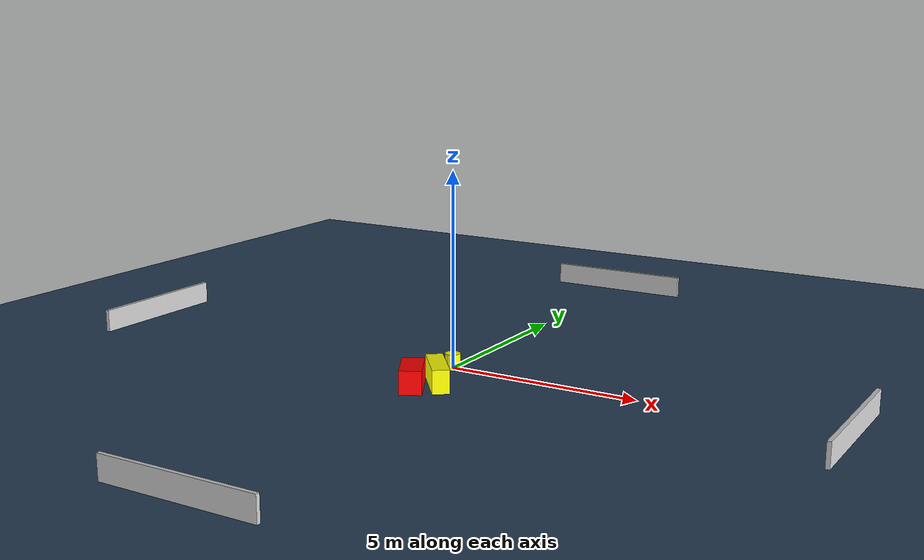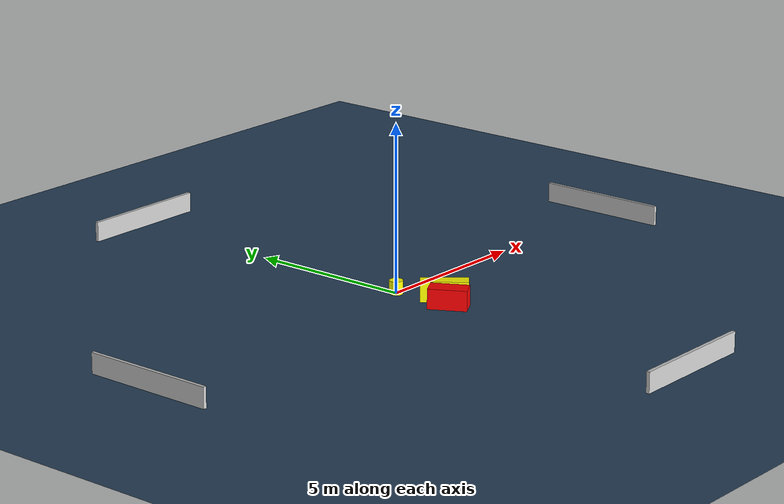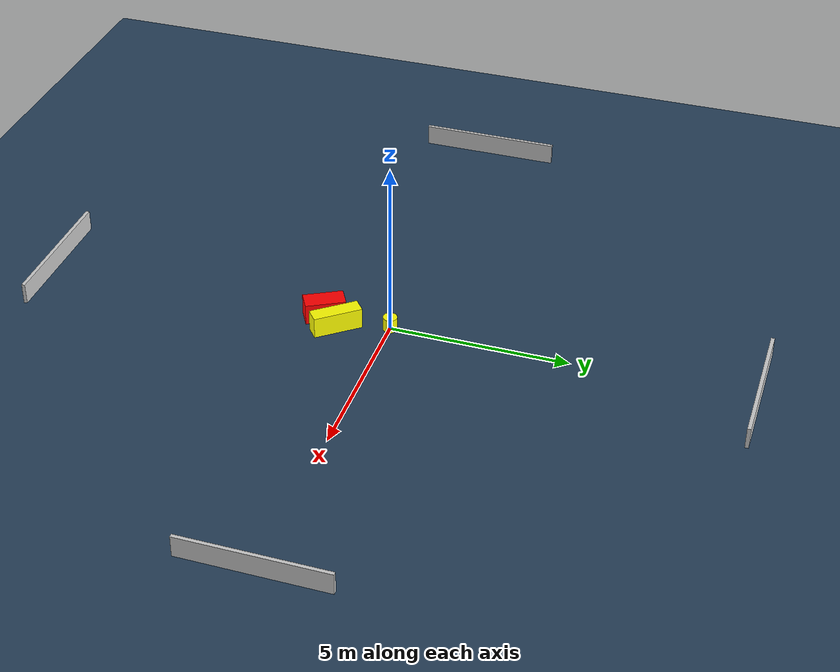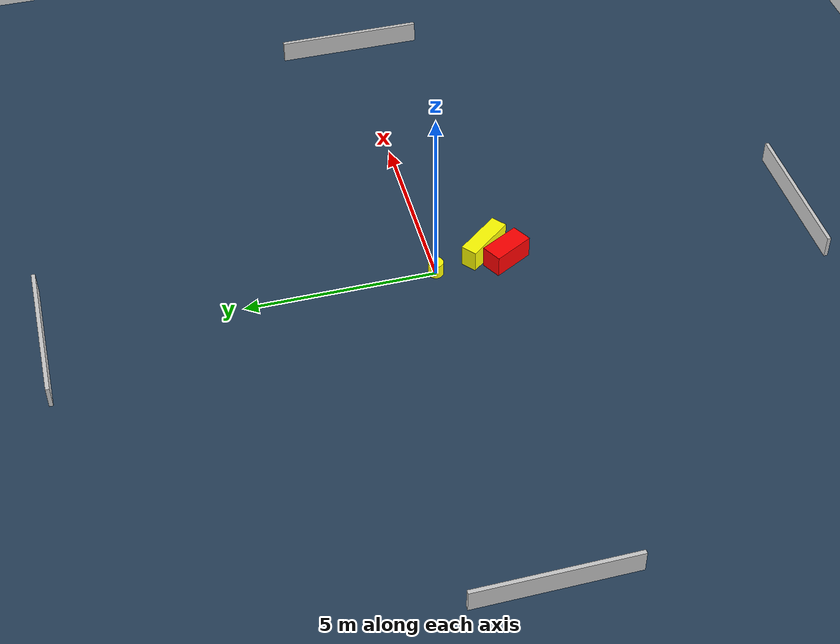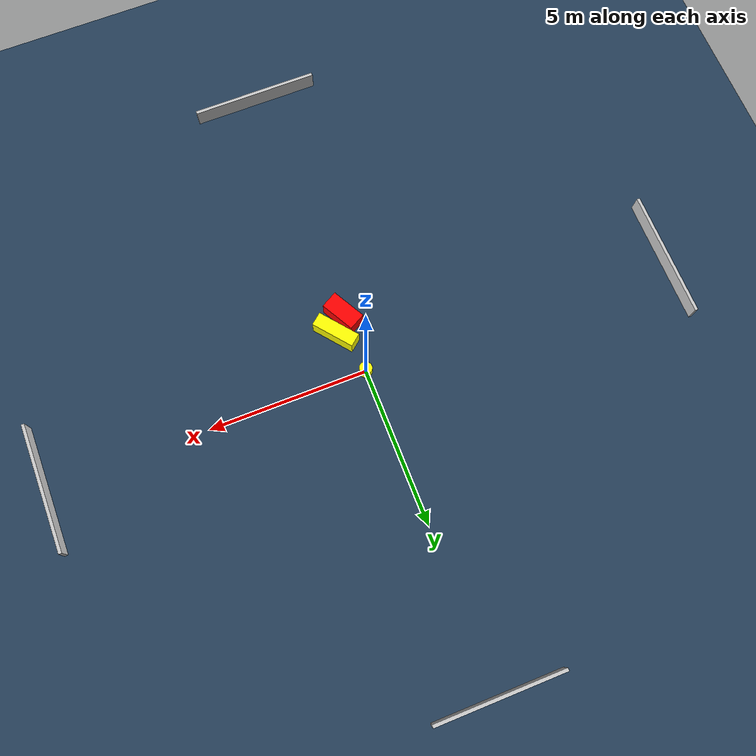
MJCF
<?xml version="1.0" ?>
<mujoco model="generated_environment">
  <option timestep="0.01" integrator="RK4" cone="elliptic"/>
  <default>
    <geom density="1"/>
  </default>
  <asset>
    <texture builtin="gradient" height="3072" name="skybox" rgb1="0.3 0.5 0.7" rgb2="0 0 0" type="skybox" width="512"/>
    <texture builtin="checker" height="300" name="groundplane" rgb1="0.2 0.3 0.4" rgb2="0.1 0.2 0.3" type="2d" width="300"/>
    <material name="groundplane" reflectance="0.2" texrepeat="5 5" texture="groundplane"/>
  </asset>
  <worldbody>
    <light dir="0 0 -1" directional="true" pos="0 0 1.5"/>
    <geom condim="3" friction="0.5 0.005 0.001" material="groundplane" name="floor" pos="0 0 0" size="0 0 0.05" type="plane"/>
    <body name="walls">
      <geom name="wall_1" condim="4" pos="-10.0 0.0 0.3" rgba="0.800000011920929 0.800000011920929 0.800000011920929 1.0" size="0.05 2.0 0.3" type="box"/>
      <geom name="wall_2" condim="4" pos="10.0 0.0 0.3" rgba="0.800000011920929 0.800000011920929 0.800000011920929 1.0" size="0.05 2.0 0.3" type="box"/>
      <geom name="wall_3" condim="4" pos="0.0 -10.0 0.3" rgba="0.800000011920929 0.800000011920929 0.800000011920929 1.0" size="2.0 0.05 0.3" type="box"/>
      <geom name="wall_4" condim="4" pos="0.0 10.0 0.3" rgba="0.800000011920929 0.800000011920929 0.800000011920929 1.0" size="2.0 0.05 0.3" type="box"/>
    </body>
    <body name="robot">
      <joint name="joint_x" type="slide" pos="0 0 0" axis="1 0 0"/>
      <joint name="joint_y" type="slide" pos="0 0 0" axis="0 1 0"/>
      <geom name="robot" type="cylinder" pos="0.0 0.0 0.2" size="0.2 0.2 0.0" mass="5.0" friction="1.0 0.005 0.0001" condim="4" rgba="1.0 1.0 0.0 1.0"/>
    </body>
    <body name="obstacle_1_movable">
      <geom name="obstacle_1_movable" condim="4" pos="0.42541797234223466 -1.4100609770485295 0.3" euler="0 0 308.90678841844084" friction="0.0 0.005 0.001" rgba="1.0 1.0 0.0 1.0" size="0.6890700900866216 0.21557669046468617 0.3" type="box" mass="0.1"/>
      <joint type="free"/>
    </body>
    <body name="obstacle_2_static">
      <geom name="obstacle_2_static" condim="4" pos="0.004528902845958054 -1.8930419033611872 0.3" euler="0 0 208.68682813865408" friction="0.0 0.005 0.001" rgba="1.0 0.0 0.0 1.0" size="0.2794464802462888 0.563573928276387 0.3" type="box"/>
    </body>
  </worldbody>
  <actuator>
    <motor name="actuator_x" joint="joint_x" gear="1" ctrlrange="-1 1"/>
    <motor name="actuator_y" joint="joint_y" gear="1" ctrlrange="-1 1"/>
  </actuator>
</mujoco>
